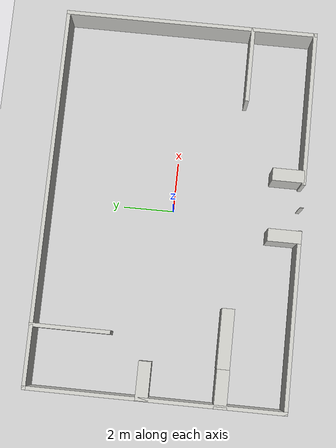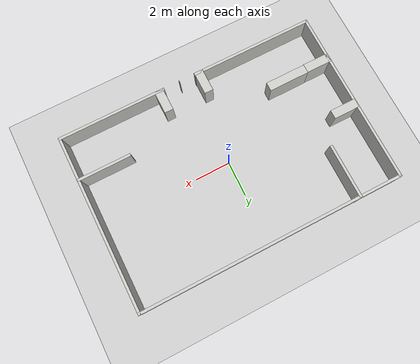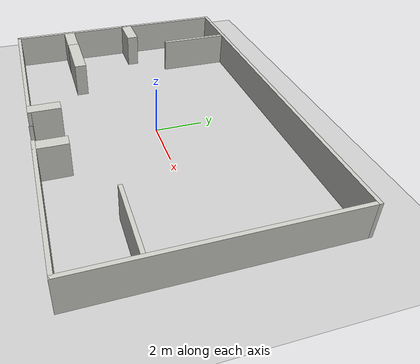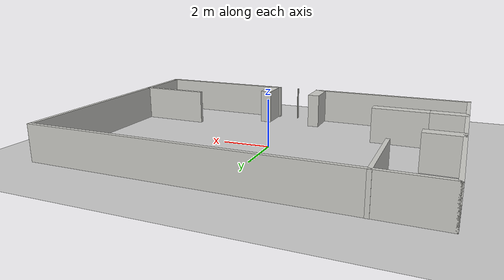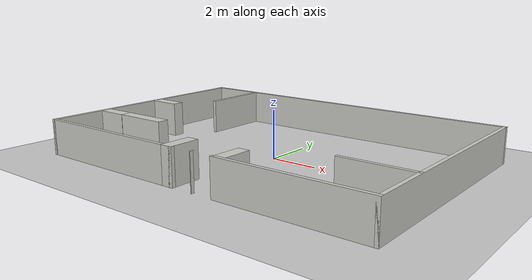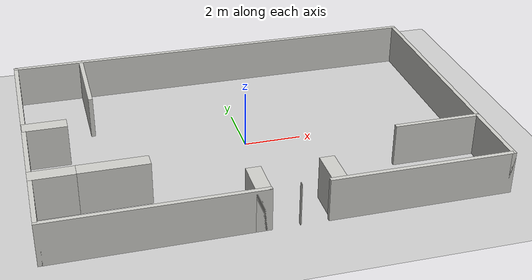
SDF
<sdf version="1.7">
 <world name="default">
  <light name="sun" type="directional">
   <pose>0 0 10 0 -0 0</pose>
   <diffuse>0.8 0.8 0.8 1</diffuse>
   <specular>0.2 0.2 0.2 1</specular>
   <attenuation>
    <range>1000</range>
    <constant>0.9</constant>
    <linear>0.01</linear>
    <quadratic>0.001</quadratic>
   </attenuation>
   <direction>-0.5 0.1 -0.9</direction>
   <spot><inner_angle>0</inner_angle><outer_angle>0</outer_angle><falloff>0</falloff></spot>
  </light>
  <model name="ground_plane">
   <static>1</static>
   <link name="link">
    <collision name="collision">
     <geometry><plane><normal>0 0 1</normal><size>100 100</size></plane></geometry>
     <surface>
      <contact><collide_bitmask>65535</collide_bitmask></contact>
      <friction><ode><mu>100</mu><mu2>50</mu2></ode></friction>
     </surface>
    </collision>
    <visual name="visual">
     <cast_shadows>0</cast_shadows>
     <geometry><plane><normal>0 0 1</normal><size>100 100</size></plane></geometry>
     <material>
      <script><uri>file://media/materials/scripts/gazebo.material</uri><name>Gazebo/Grey</name></script>
     </material>
    </visual>
   </link>
  </model>
  <gravity>0 0 -9.8</gravity>
  <magnetic_field>6e-06 2.3e-05 -4.2e-05</magnetic_field>
  <atmosphere type="adiabatic"/>
  <physics type="ode">
   <max_step_size>0.001</max_step_size>
   <real_time_factor>1</real_time_factor>
   <real_time_update_rate>1000</real_time_update_rate>
  </physics>
  <scene><ambient>0.4 0.4 0.4 1</ambient><background>0.7 0.7 0.7 1</background><shadows>1</shadows></scene>
  <audio><device>default</device></audio>
  <spherical_coordinates>
   <surface_model>EARTH_WGS84</surface_model>
   <latitude_deg>0</latitude_deg>
   <longitude_deg>0</longitude_deg>
   <elevation>0</elevation>
   <heading_deg>0</heading_deg>
  </spherical_coordinates>
  <model name="hyun_plus_wall1">
   <pose>0.005524 -0.01019 0 0 -0 0</pose>
   <link name="Wall_0">
    <collision name="Wall_0_Collision">
     <geometry><box><size>15.15 0.15 1.5</size></box></geometry>
     <pose>0 0 0.75 0 -0 0</pose>
    </collision>
    <visual name="Wall_0_Visual">
     <pose>0 0 0.75 0 -0 0</pose>
     <geometry><box><size>15.15 0.15 1.5</size></box></geometry>
     <material>
      <script><uri>file://media/materials/scripts/gazebo.material</uri><name>Gazebo/CeilingTiled</name></script>
      <ambient>1 1 1 1</ambient>
     </material>
     <meta><layer>0</layer></meta>
    </visual>
    <pose>0.0005 5 0 0 -0 0</pose>
   </link>
   <link name="Wall_13">
    <collision name="Wall_13_Collision">
     <geometry><box><size>1.33154 0.5 1.5</size></box></geometry>
     <pose>0 0 0.75 0 -0 0</pose>
    </collision>
    <visual name="Wall_13_Visual">
     <pose>0 0 0.75 0 -0 0</pose>
     <geometry><box><size>1.33154 0.5 1.5</size></box></geometry>
     <material>
      <script><uri>file://media/materials/scripts/gazebo.material</uri><name>Gazebo/CeilingTiled</name></script>
      <ambient>1 1 1 1</ambient>
     </material>
     <meta><layer>0</layer></meta>
    </visual>
    <pose>1.6685 -4.409 0 0 -0 1.5708</pose>
   </link>
   <link name="Wall_15">
    <collision name="Wall_15_Collision">
     <geometry><box><size>1.5 0.5 1.5</size></box></geometry>
     <pose>0 0 0.75 0 -0 0</pose>
    </collision>
    <visual name="Wall_15_Visual">
     <pose>0 0 0.75 0 -0 0</pose>
     <geometry><box><size>1.5 0.5 1.5</size></box></geometry>
     <material>
      <script><uri>file://media/materials/scripts/gazebo.material</uri><name>Gazebo/CeilingTiled</name></script>
      <ambient>1 1 1 1</ambient>
     </material>
     <meta><layer>0</layer></meta>
    </visual>
    <pose>-6.8255 -2.5 0 0 -0 0</pose>
   </link>
   <link name="Wall_17">
    <collision name="Wall_17_Collision">
     <geometry><box><size>1.5 0.5 1.5</size></box></geometry>
     <pose>0 0 0.75 0 -0 0</pose>
    </collision>
    <visual name="Wall_17_Visual">
     <pose>0 0 0.75 0 -0 0</pose>
     <geometry><box><size>1.5 0.5 1.5</size></box></geometry>
     <material>
      <script><uri>file://media/materials/scripts/gazebo.material</uri><name>Gazebo/CeilingTiled</name></script>
      <ambient>1 1 1 1</ambient>
     </material>
     <meta><layer>0</layer></meta>
    </visual>
    <pose>-6.8085 0.5 0 0 -0 0</pose>
   </link>
   <link name="Wall_2">
    <collision name="Wall_2_Collision">
     <geometry><box><size>10.15 0.15 1.5</size></box></geometry>
     <pose>0 0 0.75 0 -0 0</pose>
    </collision>
    <visual name="Wall_2_Visual">
     <pose>0 0 0.75 0 -0 0</pose>
     <geometry><box><size>10.15 0.15 1.5</size></box></geometry>
     <material>
      <script><uri>file://media/materials/scripts/gazebo.material</uri><name>Gazebo/CeilingTiled</name></script>
      <ambient>1 1 1 1</ambient>
     </material>
     <meta><layer>0</layer></meta>
    </visual>
    <pose>-7.4995 0 0 0 -0 -1.5708</pose>
   </link>
   <link name="Wall_3">
    <pose>0.0005 -5 0 0 -0 0</pose>
    <visual name="Wall_3_Visual_0">
     <pose>-4.02713 0 0.75 0 -0 0</pose>
     <geometry><box><size>7.09574 0.15 1.5</size></box></geometry>
     <material>
      <script><uri>file://media/materials/scripts/gazebo.material</uri><name>Gazebo/CeilingTiled</name></script>
      <ambient>1 1 1 1</ambient>
     </material>
     <meta><layer>0</layer></meta>
    </visual>
    <collision name="Wall_3_Collision_0">
     <geometry><box><size>7.09574 0.15 1.5</size></box></geometry>
     <pose>-4.02713 0 0.75 0 -0 0</pose>
    </collision>
    <visual name="Wall_3_Visual_1">
     <pose>0.43335 0 0.75 0 -0 0</pose>
     <geometry><box><size>0.025224 0.15 1.5</size></box></geometry>
     <material>
      <script><uri>file://media/materials/scripts/gazebo.material</uri><name>Gazebo/CeilingTiled</name></script>
      <ambient>1 1 1 1</ambient>
     </material>
     <meta><layer>0</layer></meta>
    </visual>
    <collision name="Wall_3_Collision_1">
     <geometry><box><size>0.025224 0.15 1.5</size></box></geometry>
     <pose>0.43335 0 0.75 0 -0 0</pose>
    </collision>
    <visual name="Wall_3_Visual_2">
     <pose>4.46048 0 0.75 0 -0 0</pose>
     <geometry><box><size>6.22904 0.15 1.5</size></box></geometry>
     <material>
      <script><uri>file://media/materials/scripts/gazebo.material</uri><name>Gazebo/CeilingTiled</name></script>
      <ambient>1 1 1 1</ambient>
     </material>
     <meta><layer>0</layer></meta>
    </visual>
    <collision name="Wall_3_Collision_2">
     <geometry><box><size>6.22904 0.15 1.5</size></box></geometry>
     <pose>4.46048 0 0.75 0 -0 0</pose>
    </collision>
   </link>
   <link name="Wall_4">
    <collision name="Wall_4_Collision">
     <geometry><box><size>10.15 0.15 1.5</size></box></geometry>
     <pose>0 0 0.75 0 -0 0</pose>
    </collision>
    <visual name="Wall_4_Visual">
     <pose>0 0 0.75 0 -0 0</pose>
     <geometry><box><size>10.15 0.15 1.5</size></box></geometry>
     <material>
      <script><uri>file://media/materials/scripts/gazebo.material</uri><name>Gazebo/CeilingTiled</name></script>
      <ambient>1 1 1 1</ambient>
     </material>
     <meta><layer>0</layer></meta>
    </visual>
    <pose>7.5005 0 0 0 -0 1.5708</pose>
   </link>
   <link name="Wall_8">
    <collision name="Wall_8_Collision">
     <geometry><box><size>1.325 0.5 1.5</size></box></geometry>
     <pose>0 0 0.75 0 -0 0</pose>
    </collision>
    <visual name="Wall_8_Visual">
     <pose>0 0 0.75 0 -0 0</pose>
     <geometry><box><size>1.325 0.5 1.5</size></box></geometry>
     <material>
      <script><uri>file://media/materials/scripts/gazebo.material</uri><name>Gazebo/CeilingTiled</name></script>
      <ambient>1 1 1 1</ambient>
     </material>
     <meta><layer>0</layer></meta>
    </visual>
    <pose>-0.7475 -4.4125 0 0 -0 1.5708</pose>
   </link>
   <static>1</static>
  </model>
  <light name="user_point_light_0_clone_clone_clone_clone_clone" type="point">
   <pose>9.71429 -0.249205 8.26219 0 -0 0</pose>
   <diffuse>0.494118 0.494118 0.494118 1</diffuse>
   <specular>0.0901961 0.0901961 0.0901961 1</specular>
   <direction>0 0 -1</direction>
   <attenuation>
    <range>50</range>
    <constant>0</constant>
    <linear>0.01</linear>
    <quadratic>0.001</quadratic>
   </attenuation>
   <cast_shadows>0</cast_shadows>
   <spot><inner_angle>0</inner_angle><outer_angle>0</outer_angle><falloff>0</falloff></spot>
  </light>
  <light name="user_point_light_0_clone_clone_clone_clone_clone_clone" type="point">
   <pose>7.63584 9.00879 8.26219 0 -0 0</pose>
   <diffuse>0.494118 0.494118 0.494118 1</diffuse>
   <specular>0.0901961 0.0901961 0.0901961 1</specular>
   <direction>0 0 -1</direction>
   <attenuation>
    <range>50</range>
    <constant>0</constant>
    <linear>0.01</linear>
    <quadratic>0.001</quadratic>
   </attenuation>
   <cast_shadows>0</cast_shadows>
   <spot><inner_angle>0</inner_angle><outer_angle>0</outer_angle><falloff>0</falloff></spot>
  </light>
  <light name="user_point_light_0_clone_clone_clone_clone_clone_clone_0" type="point">
   <pose>-7.70848 7.9004 8.26219 0 -0 0</pose>
   <diffuse>0.494118 0.494118 0.494118 1</diffuse>
   <specular>0.0901961 0.0901961 0.0901961 1</specular>
   <direction>0 0 -1</direction>
   <attenuation>
    <range>50</range>
    <constant>0</constant>
    <linear>0.01</linear>
    <quadratic>0.001</quadratic>
   </attenuation>
   <cast_shadows>0</cast_shadows>
   <spot><inner_angle>0</inner_angle><outer_angle>0</outer_angle><falloff>0</falloff></spot>
  </light>
  <light name="user_point_light_0_clone_clone_clone_clone_clone_clone_1" type="point">
   <pose>-10.2422 -1.03082 8.26219 0 -0 0</pose>
   <diffuse>0.494118 0.494118 0.494118 1</diffuse>
   <specular>0.0901961 0.0901961 0.0901961 1</specular>
   <direction>0 0 -1</direction>
   <attenuation>
    <range>50</range>
    <constant>0</constant>
    <linear>0.01</linear>
    <quadratic>0.001</quadratic>
   </attenuation>
   <cast_shadows>0</cast_shadows>
   <spot><inner_angle>0</inner_angle><outer_angle>0</outer_angle><falloff>0</falloff></spot>
  </light>
  <light name="user_point_light_0_clone_clone_clone_clone_clone_clone_2" type="point">
   <pose>-8.0627 -9.21828 8.26219 0 -0 0</pose>
   <diffuse>0.494118 0.494118 0.494118 1</diffuse>
   <specular>0.0901961 0.0901961 0.0901961 1</specular>
   <direction>0 0 -1</direction>
   <attenuation>
    <range>50</range>
    <constant>0</constant>
    <linear>0.01</linear>
    <quadratic>0.001</quadratic>
   </attenuation>
   <cast_shadows>0</cast_shadows>
   <spot><inner_angle>0</inner_angle><outer_angle>0</outer_angle><falloff>0</falloff></spot>
  </light>
  <light name="user_point_light_0_clone_clone_clone_clone_clone_clone_3" type="point">
   <pose>1.43507 -9.64929 8.26219 0 -0 0</pose>
   <diffuse>0.494118 0.494118 0.494118 1</diffuse>
   <specular>0.0901961 0.0901961 0.0901961 1</specular>
   <direction>0 0 -1</direction>
   <attenuation>
    <range>50</range>
    <constant>0</constant>
    <linear>0.01</linear>
    <quadratic>0.001</quadratic>
   </attenuation>
   <cast_shadows>0</cast_shadows>
   <spot><inner_angle>0</inner_angle><outer_angle>0</outer_angle><falloff>0</falloff></spot>
  </light>
  <model name="hyun_plus_wall2">
   <pose>-3.0375 -1.375 0 0 -0 0</pose>
   <link name="Wall_2">
    <collision name="Wall_2_Collision">
     <geometry><box><size>2.325 0.5 1.5</size></box></geometry>
     <pose>0 0 0.75 0 -0 0</pose>
    </collision>
    <visual name="Wall_2_Visual">
     <pose>0 0 0.75 0 -0 0</pose>
     <geometry><box><size>2.325 0.5 1.5</size></box></geometry>
     <material>
      <script><uri>file://media/materials/scripts/gazebo.material</uri><name>Gazebo/CeilingTiled</name></script>
      <ambient>1 1 1 1</ambient>
     </material>
     <meta><layer>0</layer></meta>
    </visual>
    <pose>-1.875 -1.125 0 0 -0 0</pose>
   </link>
   <static>1</static>
  </model>
  <model name="hyun_plus_wall3">
   <pose>3.7875 -1.2875 0 0 -0 0</pose>
   <link name="Wall_5">
    <collision name="Wall_5_Collision">
     <geometry><box><size>3.05 0.15 1.5</size></box></geometry>
     <pose>0 0 0.75 0 -0 0</pose>
    </collision>
    <visual name="Wall_5_Visual">
     <pose>0 0 0.75 0 -0 0</pose>
     <geometry><box><size>3.05 0.15 1.5</size></box></geometry>
     <material>
      <script><uri>file://media/materials/scripts/gazebo.material</uri><name>Gazebo/CeilingTiled</name></script>
      <ambient>1 1 1 1</ambient>
     </material>
     <meta><layer>0</layer></meta>
    </visual>
    <pose>2.2625 -1.2125 0 0 -0 3.14159</pose>
   </link>
   <static>1</static>
  </model>
  <model name="hyun_plus_wall4">
   <pose>-2.5875 2.5375 0 0 -0 0</pose>
   <link name="Wall_4">
    <collision name="Wall_4_Collision">
     <geometry><box><size>3.15 0.15 1.5</size></box></geometry>
     <pose>0 0 0.75 0 -0 0</pose>
    </collision>
    <visual name="Wall_4_Visual">
     <pose>0 0 0.75 0 -0 0</pose>
     <geometry><box><size>3.15 0.15 1.5</size></box></geometry>
     <material>
      <script><uri>file://media/materials/scripts/gazebo.material</uri><name>Gazebo/CeilingTiled</name></script>
      <ambient>1 1 1 1</ambient>
     </material>
     <meta><layer>0</layer></meta>
    </visual>
    <pose>-2.5125 0.9625 0 0 -0 -1.5708</pose>
   </link>
   <static>1</static>
  </model>
 </world>
</sdf>
